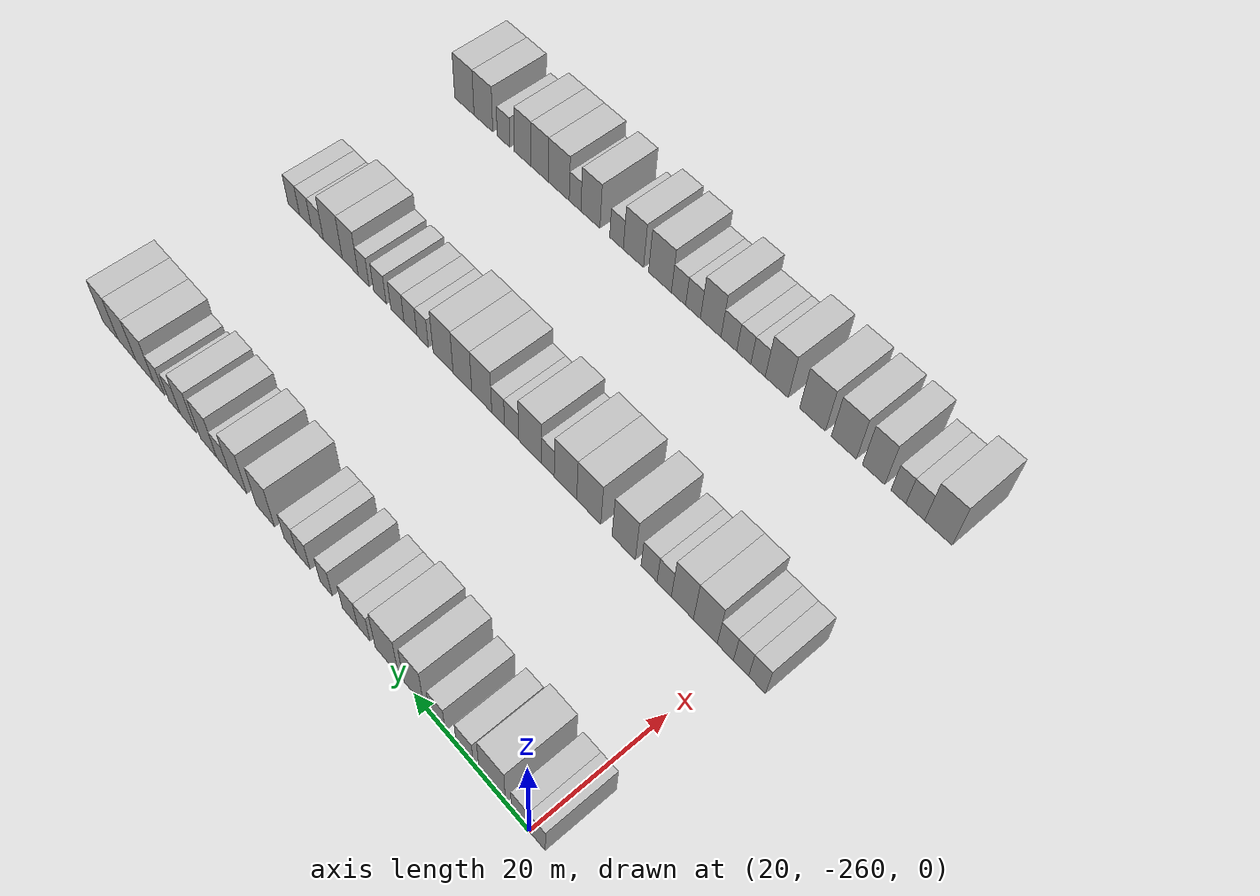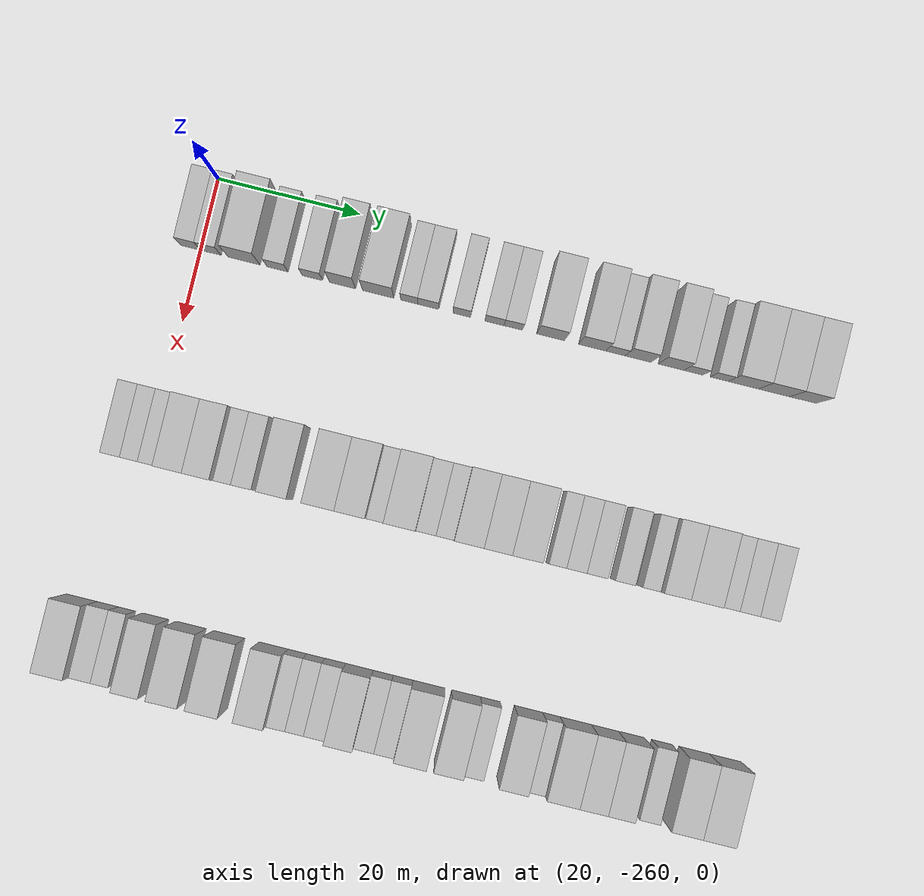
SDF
<sdf version="1.6">
 <world name="default">
  <model name="building_51">
   <static>1</static>
   <pose>25.0000 -261.2917 0 0.000000 0.000000 0.000000</pose>
   <link name="link">
    <pose>0 0 3.00 0 0 0</pose>
    <collision name="collision"><geometry><box><size>10.0000 2.7397 6.0000</size></box></geometry></collision>
    <visual name="visual">
     <cast_shadows>0</cast_shadows>
     <geometry><box><size>10.0000 2.7397 6.0000</size></box></geometry>
     <material>
      <script>
       <uri>model://HANNAS_wall/materials/scripts</uri>
       <uri>model://HANNAS_wall/materials/textures</uri>
       <name>vrc/HANNAS_wall</name>
      </script>
     </material>
    </visual>
   </link>
  </model>
  <model name="building_52">
   <static>1</static>
   <pose>25.0000 -258.4935 0 0.000000 0.000000 0.000000</pose>
   <link name="link">
    <pose>0 0 3.00 0 0 0</pose>
    <collision name="collision"><geometry><box><size>10.0000 2.8569 6.0000</size></box></geometry></collision>
    <visual name="visual">
     <cast_shadows>0</cast_shadows>
     <geometry><box><size>10.0000 2.8569 6.0000</size></box></geometry>
     <material>
      <script>
       <uri>model://HANNAS_wall/materials/scripts</uri>
       <uri>model://HANNAS_wall/materials/textures</uri>
       <name>vrc/HANNAS_wall</name>
      </script>
     </material>
    </visual>
   </link>
  </model>
  <model name="building_53">
   <static>1</static>
   <pose>25.0000 -253.8301 0 0.000000 0.000000 0.000000</pose>
   <link name="link">
    <pose>0 0 4.50 0 0 0</pose>
    <collision name="collision"><geometry><box><size>10.0000 4.4698 9.0000</size></box></geometry></collision>
    <visual name="visual">
     <cast_shadows>0</cast_shadows>
     <geometry><box><size>10.0000 4.4698 9.0000</size></box></geometry>
     <material>
      <script>
       <uri>model://HANNAS_wall/materials/scripts</uri>
       <uri>model://HANNAS_wall/materials/textures</uri>
       <name>vrc/HANNAS_wall</name>
      </script>
     </material>
    </visual>
   </link>
  </model>
  <model name="building_54">
   <static>1</static>
   <pose>25.0000 -249.1184 0 0.000000 0.000000 0.000000</pose>
   <link name="link">
    <pose>0 0 3.00 0 0 0</pose>
    <collision name="collision"><geometry><box><size>10.0000 2.9537 6.0000</size></box></geometry></collision>
    <visual name="visual">
     <cast_shadows>0</cast_shadows>
     <geometry><box><size>10.0000 2.9537 6.0000</size></box></geometry>
     <material>
      <script>
       <uri>model://HANNAS_wall/materials/scripts</uri>
       <uri>model://HANNAS_wall/materials/textures</uri>
       <name>vrc/HANNAS_wall</name>
      </script>
     </material>
    </visual>
   </link>
  </model>
  <model name="building_55">
   <static>1</static>
   <pose>25.0000 -244.2118 0 0.000000 0.000000 0.000000</pose>
   <link name="link">
    <pose>0 0 3.00 0 0 0</pose>
    <collision name="collision"><geometry><box><size>10.0000 2.8596 6.0000</size></box></geometry></collision>
    <visual name="visual">
     <cast_shadows>0</cast_shadows>
     <geometry><box><size>10.0000 2.8596 6.0000</size></box></geometry>
     <material>
      <script>
       <uri>model://HANNAS_wall/materials/scripts</uri>
       <uri>model://HANNAS_wall/materials/textures</uri>
       <name>vrc/HANNAS_wall</name>
      </script>
     </material>
    </visual>
   </link>
  </model>
  <model name="building_56">
   <static>1</static>
   <pose>25.0000 -239.9653 0 0.000000 0.000000 0.000000</pose>
   <link name="link">
    <pose>0 0 4.50 0 0 0</pose>
    <collision name="collision"><geometry><box><size>10.0000 3.6334 9.0000</size></box></geometry></collision>
    <visual name="visual">
     <cast_shadows>0</cast_shadows>
     <geometry><box><size>10.0000 3.6334 9.0000</size></box></geometry>
     <material>
      <script>
       <uri>model://HANNAS_wall/materials/scripts</uri>
       <uri>model://HANNAS_wall/materials/textures</uri>
       <name>vrc/HANNAS_wall</name>
      </script>
     </material>
    </visual>
   </link>
  </model>
  <model name="building_57">
   <static>1</static>
   <pose>25.0000 -234.9672 0 0.000000 0.000000 0.000000</pose>
   <link name="link">
    <pose>0 0 4.50 0 0 0</pose>
    <collision name="collision"><geometry><box><size>10.0000 4.3627 9.0000</size></box></geometry></collision>
    <visual name="visual">
     <cast_shadows>0</cast_shadows>
     <geometry><box><size>10.0000 4.3627 9.0000</size></box></geometry>
     <material>
      <script>
       <uri>model://HANNAS_wall/materials/scripts</uri>
       <uri>model://HANNAS_wall/materials/textures</uri>
       <name>vrc/HANNAS_wall</name>
      </script>
     </material>
    </visual>
   </link>
  </model>
  <model name="building_58">
   <static>1</static>
   <pose>25.0000 -230.5856 0 0.000000 0.000000 0.000000</pose>
   <link name="link">
    <pose>0 0 3.00 0 0 0</pose>
    <collision name="collision"><geometry><box><size>10.0000 2.4004 6.0000</size></box></geometry></collision>
    <visual name="visual">
     <cast_shadows>0</cast_shadows>
     <geometry><box><size>10.0000 2.4004 6.0000</size></box></geometry>
     <material>
      <script>
       <uri>model://HANNAS_wall/materials/scripts</uri>
       <uri>model://HANNAS_wall/materials/textures</uri>
       <name>vrc/HANNAS_wall</name>
      </script>
     </material>
    </visual>
   </link>
  </model>
  <model name="building_59">
   <static>1</static>
   <pose>25.0000 -227.9175 0 0.000000 0.000000 0.000000</pose>
   <link name="link">
    <pose>0 0 3.00 0 0 0</pose>
    <collision name="collision"><geometry><box><size>10.0000 2.9358 6.0000</size></box></geometry></collision>
    <visual name="visual">
     <cast_shadows>0</cast_shadows>
     <geometry><box><size>10.0000 2.9358 6.0000</size></box></geometry>
     <material>
      <script>
       <uri>model://HANNAS_wall/materials/scripts</uri>
       <uri>model://HANNAS_wall/materials/textures</uri>
       <name>vrc/HANNAS_wall</name>
      </script>
     </material>
    </visual>
   </link>
  </model>
  <model name="building_60">
   <static>1</static>
   <pose>25.0000 -223.2182 0 0.000000 0.000000 0.000000</pose>
   <link name="link">
    <pose>0 0 3.00 0 0 0</pose>
    <collision name="collision"><geometry><box><size>10.0000 2.4628 6.0000</size></box></geometry></collision>
    <visual name="visual">
     <cast_shadows>0</cast_shadows>
     <geometry><box><size>10.0000 2.4628 6.0000</size></box></geometry>
     <material>
      <script>
       <uri>model://HANNAS_wall/materials/scripts</uri>
       <uri>model://HANNAS_wall/materials/textures</uri>
       <name>vrc/HANNAS_wall</name>
      </script>
     </material>
    </visual>
   </link>
  </model>
  <model name="building_61">
   <static>1</static>
   <pose>25.0000 -218.6369 0 0.000000 0.000000 0.000000</pose>
   <link name="link">
    <pose>0 0 3.00 0 0 0</pose>
    <collision name="collision"><geometry><box><size>10.0000 2.6998 6.0000</size></box></geometry></collision>
    <visual name="visual">
     <cast_shadows>0</cast_shadows>
     <geometry><box><size>10.0000 2.6998 6.0000</size></box></geometry>
     <material>
      <script>
       <uri>model://HANNAS_wall/materials/scripts</uri>
       <uri>model://HANNAS_wall/materials/textures</uri>
       <name>vrc/HANNAS_wall</name>
      </script>
     </material>
    </visual>
   </link>
  </model>
  <model name="building_62">
   <static>1</static>
   <pose>25.0000 -215.9853 0 0.000000 0.000000 0.000000</pose>
   <link name="link">
    <pose>0 0 3.00 0 0 0</pose>
    <collision name="collision"><geometry><box><size>10.0000 2.6033 6.0000</size></box></geometry></collision>
    <visual name="visual">
     <cast_shadows>0</cast_shadows>
     <geometry><box><size>10.0000 2.6033 6.0000</size></box></geometry>
     <material>
      <script>
       <uri>model://HANNAS_wall/materials/scripts</uri>
       <uri>model://HANNAS_wall/materials/textures</uri>
       <name>vrc/HANNAS_wall</name>
      </script>
     </material>
    </visual>
   </link>
  </model>
  <model name="building_63">
   <static>1</static>
   <pose>25.0000 -210.7302 0 0.000000 0.000000 0.000000</pose>
   <link name="link">
    <pose>0 0 4.50 0 0 0</pose>
    <collision name="collision"><geometry><box><size>10.0000 3.9068 9.0000</size></box></geometry></collision>
    <visual name="visual">
     <cast_shadows>0</cast_shadows>
     <geometry><box><size>10.0000 3.9068 9.0000</size></box></geometry>
     <material>
      <script>
       <uri>model://HANNAS_wall/materials/scripts</uri>
       <uri>model://HANNAS_wall/materials/textures</uri>
       <name>vrc/HANNAS_wall</name>
      </script>
     </material>
    </visual>
   </link>
  </model>
  <model name="building_64">
   <static>1</static>
   <pose>25.0000 -204.8538 0 0.000000 0.000000 0.000000</pose>
   <link name="link">
    <pose>0 0 4.50 0 0 0</pose>
    <collision name="collision"><geometry><box><size>10.0000 3.8460 9.0000</size></box></geometry></collision>
    <visual name="visual">
     <cast_shadows>0</cast_shadows>
     <geometry><box><size>10.0000 3.8460 9.0000</size></box></geometry>
     <material>
      <script>
       <uri>model://HANNAS_wall/materials/scripts</uri>
       <uri>model://HANNAS_wall/materials/textures</uri>
       <name>vrc/HANNAS_wall</name>
      </script>
     </material>
    </visual>
   </link>
  </model>
  <model name="building_65">
   <static>1</static>
   <pose>25.0000 -201.5552 0 0.000000 0.000000 0.000000</pose>
   <link name="link">
    <pose>0 0 3.00 0 0 0</pose>
    <collision name="collision"><geometry><box><size>10.0000 2.7513 6.0000</size></box></geometry></collision>
    <visual name="visual">
     <cast_shadows>0</cast_shadows>
     <geometry><box><size>10.0000 2.7513 6.0000</size></box></geometry>
     <material>
      <script>
       <uri>model://HANNAS_wall/materials/scripts</uri>
       <uri>model://HANNAS_wall/materials/textures</uri>
       <name>vrc/HANNAS_wall</name>
      </script>
     </material>
    </visual>
   </link>
  </model>
  <model name="building_66">
   <static>1</static>
   <pose>25.0000 -198.3663 0 0.000000 0.000000 0.000000</pose>
   <link name="link">
    <pose>0 0 4.50 0 0 0</pose>
    <collision name="collision"><geometry><box><size>10.0000 3.6265 9.0000</size></box></geometry></collision>
    <visual name="visual">
     <cast_shadows>0</cast_shadows>
     <geometry><box><size>10.0000 3.6265 9.0000</size></box></geometry>
     <material>
      <script>
       <uri>model://HANNAS_wall/materials/scripts</uri>
       <uri>model://HANNAS_wall/materials/textures</uri>
       <name>vrc/HANNAS_wall</name>
      </script>
     </material>
    </visual>
   </link>
  </model>
  <model name="building_67">
   <static>1</static>
   <pose>25.0000 -193.7515 0 0.000000 0.000000 0.000000</pose>
   <link name="link">
    <pose>0 0 4.50 0 0 0</pose>
    <collision name="collision"><geometry><box><size>10.0000 3.6030 9.0000</size></box></geometry></collision>
    <visual name="visual">
     <cast_shadows>0</cast_shadows>
     <geometry><box><size>10.0000 3.6030 9.0000</size></box></geometry>
     <material>
      <script>
       <uri>model://HANNAS_wall/materials/scripts</uri>
       <uri>model://HANNAS_wall/materials/textures</uri>
       <name>vrc/HANNAS_wall</name>
      </script>
     </material>
    </visual>
   </link>
  </model>
  <model name="building_68">
   <static>1</static>
   <pose>25.0000 -190.6023 0 0.000000 0.000000 0.000000</pose>
   <link name="link">
    <pose>0 0 3.00 0 0 0</pose>
    <collision name="collision"><geometry><box><size>10.0000 2.6955 6.0000</size></box></geometry></collision>
    <visual name="visual">
     <cast_shadows>0</cast_shadows>
     <geometry><box><size>10.0000 2.6955 6.0000</size></box></geometry>
     <material>
      <script>
       <uri>model://HANNAS_wall/materials/scripts</uri>
       <uri>model://HANNAS_wall/materials/textures</uri>
       <name>vrc/HANNAS_wall</name>
      </script>
     </material>
    </visual>
   </link>
  </model>
  <model name="building_69">
   <static>1</static>
   <pose>25.0000 -186.9946 0 0.000000 0.000000 0.000000</pose>
   <link name="link">
    <pose>0 0 3.00 0 0 0</pose>
    <collision name="collision"><geometry><box><size>10.0000 2.5198 6.0000</size></box></geometry></collision>
    <visual name="visual">
     <cast_shadows>0</cast_shadows>
     <geometry><box><size>10.0000 2.5198 6.0000</size></box></geometry>
     <material>
      <script>
       <uri>model://HANNAS_wall/materials/scripts</uri>
       <uri>model://HANNAS_wall/materials/textures</uri>
       <name>vrc/HANNAS_wall</name>
      </script>
     </material>
    </visual>
   </link>
  </model>
  <model name="building_70">
   <static>1</static>
   <pose>25.0000 -183.5985 0 0.000000 0.000000 0.000000</pose>
   <link name="link">
    <pose>0 0 4.50 0 0 0</pose>
    <collision name="collision"><geometry><box><size>10.0000 4.2725 9.0000</size></box></geometry></collision>
    <visual name="visual">
     <cast_shadows>0</cast_shadows>
     <geometry><box><size>10.0000 4.2725 9.0000</size></box></geometry>
     <material>
      <script>
       <uri>model://HANNAS_wall/materials/scripts</uri>
       <uri>model://HANNAS_wall/materials/textures</uri>
       <name>vrc/HANNAS_wall</name>
      </script>
     </material>
    </visual>
   </link>
  </model>
  <model name="building_71">
   <static>1</static>
   <pose>25.0000 -179.2704 0 0.000000 0.000000 0.000000</pose>
   <link name="link">
    <pose>0 0 4.50 0 0 0</pose>
    <collision name="collision"><geometry><box><size>10.0000 4.3836 9.0000</size></box></geometry></collision>
    <visual name="visual">
     <cast_shadows>0</cast_shadows>
     <geometry><box><size>10.0000 4.3836 9.0000</size></box></geometry>
     <material>
      <script>
       <uri>model://HANNAS_wall/materials/scripts</uri>
       <uri>model://HANNAS_wall/materials/textures</uri>
       <name>vrc/HANNAS_wall</name>
      </script>
     </material>
    </visual>
   </link>
  </model>
  <model name="building_72">
   <static>1</static>
   <pose>25.0000 -175.2065 0 0.000000 0.000000 0.000000</pose>
   <link name="link">
    <pose>0 0 4.50 0 0 0</pose>
    <collision name="collision"><geometry><box><size>10.0000 3.7442 9.0000</size></box></geometry></collision>
    <visual name="visual">
     <cast_shadows>0</cast_shadows>
     <geometry><box><size>10.0000 3.7442 9.0000</size></box></geometry>
     <material>
      <script>
       <uri>model://HANNAS_wall/materials/scripts</uri>
       <uri>model://HANNAS_wall/materials/textures</uri>
       <name>vrc/HANNAS_wall</name>
      </script>
     </material>
    </visual>
   </link>
  </model>
  <model name="building_284">
   <static>1</static>
   <pose>55.0000 -263.9423 0 0.000000 0.000000 0.000000</pose>
   <link name="link">
    <pose>0 0 3.00 0 0 0</pose>
    <collision name="collision"><geometry><box><size>10.0000 2.6891 6.0000</size></box></geometry></collision>
    <visual name="visual">
     <cast_shadows>0</cast_shadows>
     <geometry><box><size>10.0000 2.6891 6.0000</size></box></geometry>
     <material>
      <script>
       <uri>model://HANNAS_wall/materials/scripts</uri>
       <uri>model://HANNAS_wall/materials/textures</uri>
       <name>vrc/HANNAS_wall</name>
      </script>
     </material>
    </visual>
   </link>
  </model>
  <model name="building_285">
   <static>1</static>
   <pose>55.0000 -261.3743 0 0.000000 0.000000 0.000000</pose>
   <link name="link">
    <pose>0 0 3.00 0 0 0</pose>
    <collision name="collision"><geometry><box><size>10.0000 2.4468 6.0000</size></box></geometry></collision>
    <visual name="visual">
     <cast_shadows>0</cast_shadows>
     <geometry><box><size>10.0000 2.4468 6.0000</size></box></geometry>
     <material>
      <script>
       <uri>model://HANNAS_wall/materials/scripts</uri>
       <uri>model://HANNAS_wall/materials/textures</uri>
       <name>vrc/HANNAS_wall</name>
      </script>
     </material>
    </visual>
   </link>
  </model>
  <model name="building_286">
   <static>1</static>
   <pose>55.0000 -258.8310 0 0.000000 0.000000 0.000000</pose>
   <link name="link">
    <pose>0 0 3.00 0 0 0</pose>
    <collision name="collision"><geometry><box><size>10.0000 2.6399 6.0000</size></box></geometry></collision>
    <visual name="visual">
     <cast_shadows>0</cast_shadows>
     <geometry><box><size>10.0000 2.6399 6.0000</size></box></geometry>
     <material>
      <script>
       <uri>model://HANNAS_wall/materials/scripts</uri>
       <uri>model://HANNAS_wall/materials/textures</uri>
       <name>vrc/HANNAS_wall</name>
      </script>
     </material>
    </visual>
   </link>
  </model>
  <model name="building_287">
   <static>1</static>
   <pose>55.0000 -255.5457 0 0.000000 0.000000 0.000000</pose>
   <link name="link">
    <pose>0 0 4.50 0 0 0</pose>
    <collision name="collision"><geometry><box><size>10.0000 3.9307 9.0000</size></box></geometry></collision>
    <visual name="visual">
     <cast_shadows>0</cast_shadows>
     <geometry><box><size>10.0000 3.9307 9.0000</size></box></geometry>
     <material>
      <script>
       <uri>model://HANNAS_wall/materials/scripts</uri>
       <uri>model://HANNAS_wall/materials/textures</uri>
       <name>vrc/HANNAS_wall</name>
      </script>
     </material>
    </visual>
   </link>
  </model>
  <model name="building_288">
   <static>1</static>
   <pose>55.0000 -251.7187 0 0.000000 0.000000 0.000000</pose>
   <link name="link">
    <pose>0 0 4.50 0 0 0</pose>
    <collision name="collision"><geometry><box><size>10.0000 3.7232 9.0000</size></box></geometry></collision>
    <visual name="visual">
     <cast_shadows>0</cast_shadows>
     <geometry><box><size>10.0000 3.7232 9.0000</size></box></geometry>
     <material>
      <script>
       <uri>model://HANNAS_wall/materials/scripts</uri>
       <uri>model://HANNAS_wall/materials/textures</uri>
       <name>vrc/HANNAS_wall</name>
      </script>
     </material>
    </visual>
   </link>
  </model>
  <model name="building_289">
   <static>1</static>
   <pose>55.0000 -248.6297 0 0.000000 0.000000 0.000000</pose>
   <link name="link">
    <pose>0 0 3.00 0 0 0</pose>
    <collision name="collision"><geometry><box><size>10.0000 2.4548 6.0000</size></box></geometry></collision>
    <visual name="visual">
     <cast_shadows>0</cast_shadows>
     <geometry><box><size>10.0000 2.4548 6.0000</size></box></geometry>
     <material>
      <script>
       <uri>model://HANNAS_wall/materials/scripts</uri>
       <uri>model://HANNAS_wall/materials/textures</uri>
       <name>vrc/HANNAS_wall</name>
      </script>
     </material>
    </visual>
   </link>
  </model>
  <model name="building_290">
   <static>1</static>
   <pose>55.0000 -246.0235 0 0.000000 0.000000 0.000000</pose>
   <link name="link">
    <pose>0 0 3.00 0 0 0</pose>
    <collision name="collision"><geometry><box><size>10.0000 2.7576 6.0000</size></box></geometry></collision>
    <visual name="visual">
     <cast_shadows>0</cast_shadows>
     <geometry><box><size>10.0000 2.7576 6.0000</size></box></geometry>
     <material>
      <script>
       <uri>model://HANNAS_wall/materials/scripts</uri>
       <uri>model://HANNAS_wall/materials/textures</uri>
       <name>vrc/HANNAS_wall</name>
      </script>
     </material>
    </visual>
   </link>
  </model>
  <model name="building_291">
   <static>1</static>
   <pose>55.0000 -241.5832 0 0.000000 0.000000 0.000000</pose>
   <link name="link">
    <pose>0 0 4.50 0 0 0</pose>
    <collision name="collision"><geometry><box><size>10.0000 4.1232 9.0000</size></box></geometry></collision>
    <visual name="visual">
     <cast_shadows>0</cast_shadows>
     <geometry><box><size>10.0000 4.1232 9.0000</size></box></geometry>
     <material>
      <script>
       <uri>model://HANNAS_wall/materials/scripts</uri>
       <uri>model://HANNAS_wall/materials/textures</uri>
       <name>vrc/HANNAS_wall</name>
      </script>
     </material>
    </visual>
   </link>
  </model>
  <model name="building_292">
   <static>1</static>
   <pose>55.0000 -235.3112 0 0.000000 0.000000 0.000000</pose>
   <link name="link">
    <pose>0 0 4.50 0 0 0</pose>
    <collision name="collision"><geometry><box><size>10.0000 4.4206 9.0000</size></box></geometry></collision>
    <visual name="visual">
     <cast_shadows>0</cast_shadows>
     <geometry><box><size>10.0000 4.4206 9.0000</size></box></geometry>
     <material>
      <script>
       <uri>model://HANNAS_wall/materials/scripts</uri>
       <uri>model://HANNAS_wall/materials/textures</uri>
       <name>vrc/HANNAS_wall</name>
      </script>
     </material>
    </visual>
   </link>
  </model>
  <model name="building_293">
   <static>1</static>
   <pose>55.0000 -231.0193 0 0.000000 0.000000 0.000000</pose>
   <link name="link">
    <pose>0 0 4.50 0 0 0</pose>
    <collision name="collision"><geometry><box><size>10.0000 4.1633 9.0000</size></box></geometry></collision>
    <visual name="visual">
     <cast_shadows>0</cast_shadows>
     <geometry><box><size>10.0000 4.1633 9.0000</size></box></geometry>
     <material>
      <script>
       <uri>model://HANNAS_wall/materials/scripts</uri>
       <uri>model://HANNAS_wall/materials/textures</uri>
       <name>vrc/HANNAS_wall</name>
      </script>
     </material>
    </visual>
   </link>
  </model>
  <model name="building_294">
   <static>1</static>
   <pose>55.0000 -227.7117 0 0.000000 0.000000 0.000000</pose>
   <link name="link">
    <pose>0 0 3.00 0 0 0</pose>
    <collision name="collision"><geometry><box><size>10.0000 2.4520 6.0000</size></box></geometry></collision>
    <visual name="visual">
     <cast_shadows>0</cast_shadows>
     <geometry><box><size>10.0000 2.4520 6.0000</size></box></geometry>
     <material>
      <script>
       <uri>model://HANNAS_wall/materials/scripts</uri>
       <uri>model://HANNAS_wall/materials/textures</uri>
       <name>vrc/HANNAS_wall</name>
      </script>
     </material>
    </visual>
   </link>
  </model>
  <model name="building_295">
   <static>1</static>
   <pose>55.0000 -224.3098 0 0.000000 0.000000 0.000000</pose>
   <link name="link">
    <pose>0 0 4.50 0 0 0</pose>
    <collision name="collision"><geometry><box><size>10.0000 4.3518 9.0000</size></box></geometry></collision>
    <visual name="visual">
     <cast_shadows>0</cast_shadows>
     <geometry><box><size>10.0000 4.3518 9.0000</size></box></geometry>
     <material>
      <script>
       <uri>model://HANNAS_wall/materials/scripts</uri>
       <uri>model://HANNAS_wall/materials/textures</uri>
       <name>vrc/HANNAS_wall</name>
      </script>
     </material>
    </visual>
   </link>
  </model>
  <model name="building_296">
   <static>1</static>
   <pose>55.0000 -220.7575 0 0.000000 0.000000 0.000000</pose>
   <link name="link">
    <pose>0 0 3.00 0 0 0</pose>
    <collision name="collision"><geometry><box><size>10.0000 2.7527 6.0000</size></box></geometry></collision>
    <visual name="visual">
     <cast_shadows>0</cast_shadows>
     <geometry><box><size>10.0000 2.7527 6.0000</size></box></geometry>
     <material>
      <script>
       <uri>model://HANNAS_wall/materials/scripts</uri>
       <uri>model://HANNAS_wall/materials/textures</uri>
       <name>vrc/HANNAS_wall</name>
      </script>
     </material>
    </visual>
   </link>
  </model>
  <model name="building_297">
   <static>1</static>
   <pose>55.0000 -218.1315 0 0.000000 0.000000 0.000000</pose>
   <link name="link">
    <pose>0 0 3.00 0 0 0</pose>
    <collision name="collision"><geometry><box><size>10.0000 2.4993 6.0000</size></box></geometry></collision>
    <visual name="visual">
     <cast_shadows>0</cast_shadows>
     <geometry><box><size>10.0000 2.4993 6.0000</size></box></geometry>
     <material>
      <script>
       <uri>model://HANNAS_wall/materials/scripts</uri>
       <uri>model://HANNAS_wall/materials/textures</uri>
       <name>vrc/HANNAS_wall</name>
      </script>
     </material>
    </visual>
   </link>
  </model>
  <model name="building_298">
   <static>1</static>
   <pose>55.0000 -214.8879 0 0.000000 0.000000 0.000000</pose>
   <link name="link">
    <pose>0 0 4.50 0 0 0</pose>
    <collision name="collision"><geometry><box><size>10.0000 3.9878 9.0000</size></box></geometry></collision>
    <visual name="visual">
     <cast_shadows>0</cast_shadows>
     <geometry><box><size>10.0000 3.9878 9.0000</size></box></geometry>
     <material>
      <script>
       <uri>model://HANNAS_wall/materials/scripts</uri>
       <uri>model://HANNAS_wall/materials/textures</uri>
       <name>vrc/HANNAS_wall</name>
      </script>
     </material>
    </visual>
   </link>
  </model>
  <model name="building_299">
   <static>1</static>
   <pose>55.0000 -210.9860 0 0.000000 0.000000 0.000000</pose>
   <link name="link">
    <pose>0 0 4.50 0 0 0</pose>
    <collision name="collision"><geometry><box><size>10.0000 3.8160 9.0000</size></box></geometry></collision>
    <visual name="visual">
     <cast_shadows>0</cast_shadows>
     <geometry><box><size>10.0000 3.8160 9.0000</size></box></geometry>
     <material>
      <script>
       <uri>model://HANNAS_wall/materials/scripts</uri>
       <uri>model://HANNAS_wall/materials/textures</uri>
       <name>vrc/HANNAS_wall</name>
      </script>
     </material>
    </visual>
   </link>
  </model>
  <model name="building_300">
   <static>1</static>
   <pose>55.0000 -207.0012 0 0.000000 0.000000 0.000000</pose>
   <link name="link">
    <pose>0 0 4.50 0 0 0</pose>
    <collision name="collision"><geometry><box><size>10.0000 4.1535 9.0000</size></box></geometry></collision>
    <visual name="visual">
     <cast_shadows>0</cast_shadows>
     <geometry><box><size>10.0000 4.1535 9.0000</size></box></geometry>
     <material>
      <script>
       <uri>model://HANNAS_wall/materials/scripts</uri>
       <uri>model://HANNAS_wall/materials/textures</uri>
       <name>vrc/HANNAS_wall</name>
      </script>
     </material>
    </visual>
   </link>
  </model>
  <model name="building_301">
   <static>1</static>
   <pose>55.0000 -202.7192 0 0.000000 0.000000 0.000000</pose>
   <link name="link">
    <pose>0 0 3.00 0 0 0</pose>
    <collision name="collision"><geometry><box><size>10.0000 2.4105 6.0000</size></box></geometry></collision>
    <visual name="visual">
     <cast_shadows>0</cast_shadows>
     <geometry><box><size>10.0000 2.4105 6.0000</size></box></geometry>
     <material>
      <script>
       <uri>model://HANNAS_wall/materials/scripts</uri>
       <uri>model://HANNAS_wall/materials/textures</uri>
       <name>vrc/HANNAS_wall</name>
      </script>
     </material>
    </visual>
   </link>
  </model>
  <model name="building_302">
   <static>1</static>
   <pose>55.0000 -200.1260 0 0.000000 0.000000 0.000000</pose>
   <link name="link">
    <pose>0 0 3.00 0 0 0</pose>
    <collision name="collision"><geometry><box><size>10.0000 2.7760 6.0000</size></box></geometry></collision>
    <visual name="visual">
     <cast_shadows>0</cast_shadows>
     <geometry><box><size>10.0000 2.7760 6.0000</size></box></geometry>
     <material>
      <script>
       <uri>model://HANNAS_wall/materials/scripts</uri>
       <uri>model://HANNAS_wall/materials/textures</uri>
       <name>vrc/HANNAS_wall</name>
      </script>
     </material>
    </visual>
   </link>
  </model>
  <model name="building_303">
   <static>1</static>
   <pose>55.0000 -197.3080 0 0.000000 0.000000 0.000000</pose>
   <link name="link">
    <pose>0 0 3.00 0 0 0</pose>
    <collision name="collision"><geometry><box><size>10.0000 2.8600 6.0000</size></box></geometry></collision>
    <visual name="visual">
     <cast_shadows>0</cast_shadows>
     <geometry><box><size>10.0000 2.8600 6.0000</size></box></geometry>
     <material>
      <script>
       <uri>model://HANNAS_wall/materials/scripts</uri>
       <uri>model://HANNAS_wall/materials/textures</uri>
       <name>vrc/HANNAS_wall</name>
      </script>
     </material>
    </visual>
   </link>
  </model>
  <model name="building_304">
   <static>1</static>
   <pose>55.0000 -193.4981 0 0.000000 0.000000 0.000000</pose>
   <link name="link">
    <pose>0 0 3.00 0 0 0</pose>
    <collision name="collision"><geometry><box><size>10.0000 2.7597 6.0000</size></box></geometry></collision>
    <visual name="visual">
     <cast_shadows>0</cast_shadows>
     <geometry><box><size>10.0000 2.7597 6.0000</size></box></geometry>
     <material>
      <script>
       <uri>model://HANNAS_wall/materials/scripts</uri>
       <uri>model://HANNAS_wall/materials/textures</uri>
       <name>vrc/HANNAS_wall</name>
      </script>
     </material>
    </visual>
   </link>
  </model>
  <model name="building_305">
   <static>1</static>
   <pose>55.0000 -189.8906 0 0.000000 0.000000 0.000000</pose>
   <link name="link">
    <pose>0 0 3.00 0 0 0</pose>
    <collision name="collision"><geometry><box><size>10.0000 2.4553 6.0000</size></box></geometry></collision>
    <visual name="visual">
     <cast_shadows>0</cast_shadows>
     <geometry><box><size>10.0000 2.4553 6.0000</size></box></geometry>
     <material>
      <script>
       <uri>model://HANNAS_wall/materials/scripts</uri>
       <uri>model://HANNAS_wall/materials/textures</uri>
       <name>vrc/HANNAS_wall</name>
      </script>
     </material>
    </visual>
   </link>
  </model>
  <model name="building_306">
   <static>1</static>
   <pose>55.0000 -186.8579 0 0.000000 0.000000 0.000000</pose>
   <link name="link">
    <pose>0 0 4.50 0 0 0</pose>
    <collision name="collision"><geometry><box><size>10.0000 3.6101 9.0000</size></box></geometry></collision>
    <visual name="visual">
     <cast_shadows>0</cast_shadows>
     <geometry><box><size>10.0000 3.6101 9.0000</size></box></geometry>
     <material>
      <script>
       <uri>model://HANNAS_wall/materials/scripts</uri>
       <uri>model://HANNAS_wall/materials/textures</uri>
       <name>vrc/HANNAS_wall</name>
      </script>
     </material>
    </visual>
   </link>
  </model>
  <model name="building_307">
   <static>1</static>
   <pose>55.0000 -182.8649 0 0.000000 0.000000 0.000000</pose>
   <link name="link">
    <pose>0 0 4.50 0 0 0</pose>
    <collision name="collision"><geometry><box><size>10.0000 4.3759 9.0000</size></box></geometry></collision>
    <visual name="visual">
     <cast_shadows>0</cast_shadows>
     <geometry><box><size>10.0000 4.3759 9.0000</size></box></geometry>
     <material>
      <script>
       <uri>model://HANNAS_wall/materials/scripts</uri>
       <uri>model://HANNAS_wall/materials/textures</uri>
       <name>vrc/HANNAS_wall</name>
      </script>
     </material>
    </visual>
   </link>
  </model>
  <model name="building_308">
   <static>1</static>
   <pose>55.0000 -179.2752 0 0.000000 0.000000 0.000000</pose>
   <link name="link">
    <pose>0 0 3.00 0 0 0</pose>
    <collision name="collision"><geometry><box><size>10.0000 2.8035 6.0000</size></box></geometry></collision>
    <visual name="visual">
     <cast_shadows>0</cast_shadows>
     <geometry><box><size>10.0000 2.8035 6.0000</size></box></geometry>
     <material>
      <script>
       <uri>model://HANNAS_wall/materials/scripts</uri>
       <uri>model://HANNAS_wall/materials/textures</uri>
       <name>vrc/HANNAS_wall</name>
      </script>
     </material>
    </visual>
   </link>
  </model>
  <model name="building_309">
   <static>1</static>
   <pose>55.0000 -176.4756 0 0.000000 0.000000 0.000000</pose>
   <link name="link">
    <pose>0 0 3.00 0 0 0</pose>
    <collision name="collision"><geometry><box><size>10.0000 2.7957 6.0000</size></box></geometry></collision>
    <visual name="visual">
     <cast_shadows>0</cast_shadows>
     <geometry><box><size>10.0000 2.7957 6.0000</size></box></geometry>
     <material>
      <script>
       <uri>model://HANNAS_wall/materials/scripts</uri>
       <uri>model://HANNAS_wall/materials/textures</uri>
       <name>vrc/HANNAS_wall</name>
      </script>
     </material>
    </visual>
   </link>
  </model>
  <model name="building_310">
   <static>1</static>
   <pose>55.0000 -173.6918 0 0.000000 0.000000 0.000000</pose>
   <link name="link">
    <pose>0 0 3.00 0 0 0</pose>
    <collision name="collision"><geometry><box><size>10.0000 2.7719 6.0000</size></box></geometry></collision>
    <visual name="visual">
     <cast_shadows>0</cast_shadows>
     <geometry><box><size>10.0000 2.7719 6.0000</size></box></geometry>
     <material>
      <script>
       <uri>model://HANNAS_wall/materials/scripts</uri>
       <uri>model://HANNAS_wall/materials/textures</uri>
       <name>vrc/HANNAS_wall</name>
      </script>
     </material>
    </visual>
   </link>
  </model>
  <model name="building_523">
   <static>1</static>
   <pose>85.0000 -264.2668 0 0.000000 0.000000 0.000000</pose>
   <link name="link">
    <pose>0 0 4.50 0 0 0</pose>
    <collision name="collision"><geometry><box><size>10.0000 4.3327 9.0000</size></box></geometry></collision>
    <visual name="visual">
     <cast_shadows>0</cast_shadows>
     <geometry><box><size>10.0000 4.3327 9.0000</size></box></geometry>
     <material>
      <script>
       <uri>model://HANNAS_wall/materials/scripts</uri>
       <uri>model://HANNAS_wall/materials/textures</uri>
       <name>vrc/HANNAS_wall</name>
      </script>
     </material>
    </visual>
   </link>
  </model>
  <model name="building_524">
   <static>1</static>
   <pose>85.0000 -260.6068 0 0.000000 0.000000 0.000000</pose>
   <link name="link">
    <pose>0 0 3.00 0 0 0</pose>
    <collision name="collision"><geometry><box><size>10.0000 2.9872 6.0000</size></box></geometry></collision>
    <visual name="visual">
     <cast_shadows>0</cast_shadows>
     <geometry><box><size>10.0000 2.9872 6.0000</size></box></geometry>
     <material>
      <script>
       <uri>model://HANNAS_wall/materials/scripts</uri>
       <uri>model://HANNAS_wall/materials/textures</uri>
       <name>vrc/HANNAS_wall</name>
      </script>
     </material>
    </visual>
   </link>
  </model>
  <model name="building_525">
   <static>1</static>
   <pose>85.0000 -257.9030 0 0.000000 0.000000 0.000000</pose>
   <link name="link">
    <pose>0 0 3.00 0 0 0</pose>
    <collision name="collision"><geometry><box><size>10.0000 2.4205 6.0000</size></box></geometry></collision>
    <visual name="visual">
     <cast_shadows>0</cast_shadows>
     <geometry><box><size>10.0000 2.4205 6.0000</size></box></geometry>
     <material>
      <script>
       <uri>model://HANNAS_wall/materials/scripts</uri>
       <uri>model://HANNAS_wall/materials/textures</uri>
       <name>vrc/HANNAS_wall</name>
      </script>
     </material>
    </visual>
   </link>
  </model>
  <model name="building_526">
   <static>1</static>
   <pose>85.0000 -253.8433 0 0.000000 0.000000 0.000000</pose>
   <link name="link">
    <pose>0 0 4.50 0 0 0</pose>
    <collision name="collision"><geometry><box><size>10.0000 3.6988 9.0000</size></box></geometry></collision>
    <visual name="visual">
     <cast_shadows>0</cast_shadows>
     <geometry><box><size>10.0000 3.6988 9.0000</size></box></geometry>
     <material>
      <script>
       <uri>model://HANNAS_wall/materials/scripts</uri>
       <uri>model://HANNAS_wall/materials/textures</uri>
       <name>vrc/HANNAS_wall</name>
      </script>
     </material>
    </visual>
   </link>
  </model>
  <model name="building_527">
   <static>1</static>
   <pose>85.0000 -248.8671 0 0.000000 0.000000 0.000000</pose>
   <link name="link">
    <pose>0 0 4.50 0 0 0</pose>
    <collision name="collision"><geometry><box><size>10.0000 4.2536 9.0000</size></box></geometry></collision>
    <visual name="visual">
     <cast_shadows>0</cast_shadows>
     <geometry><box><size>10.0000 4.2536 9.0000</size></box></geometry>
     <material>
      <script>
       <uri>model://HANNAS_wall/materials/scripts</uri>
       <uri>model://HANNAS_wall/materials/textures</uri>
       <name>vrc/HANNAS_wall</name>
      </script>
     </material>
    </visual>
   </link>
  </model>
  <model name="building_528">
   <static>1</static>
   <pose>85.0000 -243.5171 0 0.000000 0.000000 0.000000</pose>
   <link name="link">
    <pose>0 0 4.50 0 0 0</pose>
    <collision name="collision"><geometry><box><size>10.0000 4.4463 9.0000</size></box></geometry></collision>
    <visual name="visual">
     <cast_shadows>0</cast_shadows>
     <geometry><box><size>10.0000 4.4463 9.0000</size></box></geometry>
     <material>
      <script>
       <uri>model://HANNAS_wall/materials/scripts</uri>
       <uri>model://HANNAS_wall/materials/textures</uri>
       <name>vrc/HANNAS_wall</name>
      </script>
     </material>
    </visual>
   </link>
  </model>
  <model name="building_529">
   <static>1</static>
   <pose>85.0000 -237.2376 0 0.000000 0.000000 0.000000</pose>
   <link name="link">
    <pose>0 0 4.50 0 0 0</pose>
    <collision name="collision"><geometry><box><size>10.0000 4.1128 9.0000</size></box></geometry></collision>
    <visual name="visual">
     <cast_shadows>0</cast_shadows>
     <geometry><box><size>10.0000 4.1128 9.0000</size></box></geometry>
     <material>
      <script>
       <uri>model://HANNAS_wall/materials/scripts</uri>
       <uri>model://HANNAS_wall/materials/textures</uri>
       <name>vrc/HANNAS_wall</name>
      </script>
     </material>
    </visual>
   </link>
  </model>
  <model name="building_530">
   <static>1</static>
   <pose>85.0000 -233.8771 0 0.000000 0.000000 0.000000</pose>
   <link name="link">
    <pose>0 0 3.00 0 0 0</pose>
    <collision name="collision"><geometry><box><size>10.0000 2.6082 6.0000</size></box></geometry></collision>
    <visual name="visual">
     <cast_shadows>0</cast_shadows>
     <geometry><box><size>10.0000 2.6082 6.0000</size></box></geometry>
     <material>
      <script>
       <uri>model://HANNAS_wall/materials/scripts</uri>
       <uri>model://HANNAS_wall/materials/textures</uri>
       <name>vrc/HANNAS_wall</name>
      </script>
     </material>
    </visual>
   </link>
  </model>
  <model name="building_531">
   <static>1</static>
   <pose>85.0000 -231.2850 0 0.000000 0.000000 0.000000</pose>
   <link name="link">
    <pose>0 0 3.00 0 0 0</pose>
    <collision name="collision"><geometry><box><size>10.0000 2.5759 6.0000</size></box></geometry></collision>
    <visual name="visual">
     <cast_shadows>0</cast_shadows>
     <geometry><box><size>10.0000 2.5759 6.0000</size></box></geometry>
     <material>
      <script>
       <uri>model://HANNAS_wall/materials/scripts</uri>
       <uri>model://HANNAS_wall/materials/textures</uri>
       <name>vrc/HANNAS_wall</name>
      </script>
     </material>
    </visual>
   </link>
  </model>
  <model name="building_532">
   <static>1</static>
   <pose>85.0000 -228.5389 0 0.000000 0.000000 0.000000</pose>
   <link name="link">
    <pose>0 0 3.00 0 0 0</pose>
    <collision name="collision"><geometry><box><size>10.0000 2.9163 6.0000</size></box></geometry></collision>
    <visual name="visual">
     <cast_shadows>0</cast_shadows>
     <geometry><box><size>10.0000 2.9163 6.0000</size></box></geometry>
     <material>
      <script>
       <uri>model://HANNAS_wall/materials/scripts</uri>
       <uri>model://HANNAS_wall/materials/textures</uri>
       <name>vrc/HANNAS_wall</name>
      </script>
     </material>
    </visual>
   </link>
  </model>
  <model name="building_533">
   <static>1</static>
   <pose>85.0000 -225.1485 0 0.000000 0.000000 0.000000</pose>
   <link name="link">
    <pose>0 0 4.50 0 0 0</pose>
    <collision name="collision"><geometry><box><size>10.0000 3.8646 9.0000</size></box></geometry></collision>
    <visual name="visual">
     <cast_shadows>0</cast_shadows>
     <geometry><box><size>10.0000 3.8646 9.0000</size></box></geometry>
     <material>
      <script>
       <uri>model://HANNAS_wall/materials/scripts</uri>
       <uri>model://HANNAS_wall/materials/textures</uri>
       <name>vrc/HANNAS_wall</name>
      </script>
     </material>
    </visual>
   </link>
  </model>
  <model name="building_534">
   <static>1</static>
   <pose>85.0000 -221.8143 0 0.000000 0.000000 0.000000</pose>
   <link name="link">
    <pose>0 0 3.00 0 0 0</pose>
    <collision name="collision"><geometry><box><size>10.0000 2.8038 6.0000</size></box></geometry></collision>
    <visual name="visual">
     <cast_shadows>0</cast_shadows>
     <geometry><box><size>10.0000 2.8038 6.0000</size></box></geometry>
     <material>
      <script>
       <uri>model://HANNAS_wall/materials/scripts</uri>
       <uri>model://HANNAS_wall/materials/textures</uri>
       <name>vrc/HANNAS_wall</name>
      </script>
     </material>
    </visual>
   </link>
  </model>
  <model name="building_535">
   <static>1</static>
   <pose>85.0000 -219.0327 0 0.000000 0.000000 0.000000</pose>
   <link name="link">
    <pose>0 0 3.00 0 0 0</pose>
    <collision name="collision"><geometry><box><size>10.0000 2.7595 6.0000</size></box></geometry></collision>
    <visual name="visual">
     <cast_shadows>0</cast_shadows>
     <geometry><box><size>10.0000 2.7595 6.0000</size></box></geometry>
     <material>
      <script>
       <uri>model://HANNAS_wall/materials/scripts</uri>
       <uri>model://HANNAS_wall/materials/textures</uri>
       <name>vrc/HANNAS_wall</name>
      </script>
     </material>
    </visual>
   </link>
  </model>
  <model name="building_536">
   <static>1</static>
   <pose>85.0000 -215.4253 0 0.000000 0.000000 0.000000</pose>
   <link name="link">
    <pose>0 0 4.50 0 0 0</pose>
    <collision name="collision"><geometry><box><size>10.0000 4.4552 9.0000</size></box></geometry></collision>
    <visual name="visual">
     <cast_shadows>0</cast_shadows>
     <geometry><box><size>10.0000 4.4552 9.0000</size></box></geometry>
     <material>
      <script>
       <uri>model://HANNAS_wall/materials/scripts</uri>
       <uri>model://HANNAS_wall/materials/textures</uri>
       <name>vrc/HANNAS_wall</name>
      </script>
     </material>
    </visual>
   </link>
  </model>
  <model name="building_537">
   <static>1</static>
   <pose>85.0000 -210.1763 0 0.000000 0.000000 0.000000</pose>
   <link name="link">
    <pose>0 0 4.50 0 0 0</pose>
    <collision name="collision"><geometry><box><size>10.0000 4.0428 9.0000</size></box></geometry></collision>
    <visual name="visual">
     <cast_shadows>0</cast_shadows>
     <geometry><box><size>10.0000 4.0428 9.0000</size></box></geometry>
     <material>
      <script>
       <uri>model://HANNAS_wall/materials/scripts</uri>
       <uri>model://HANNAS_wall/materials/textures</uri>
       <name>vrc/HANNAS_wall</name>
      </script>
     </material>
    </visual>
   </link>
  </model>
  <model name="building_538">
   <static>1</static>
   <pose>85.0000 -206.7705 0 0.000000 0.000000 0.000000</pose>
   <link name="link">
    <pose>0 0 3.00 0 0 0</pose>
    <collision name="collision"><geometry><box><size>10.0000 2.7689 6.0000</size></box></geometry></collision>
    <visual name="visual">
     <cast_shadows>0</cast_shadows>
     <geometry><box><size>10.0000 2.7689 6.0000</size></box></geometry>
     <material>
      <script>
       <uri>model://HANNAS_wall/materials/scripts</uri>
       <uri>model://HANNAS_wall/materials/textures</uri>
       <name>vrc/HANNAS_wall</name>
      </script>
     </material>
    </visual>
   </link>
  </model>
  <model name="building_539">
   <static>1</static>
   <pose>85.0000 -201.4028 0 0.000000 0.000000 0.000000</pose>
   <link name="link">
    <pose>0 0 4.50 0 0 0</pose>
    <collision name="collision"><geometry><box><size>10.0000 3.9664 9.0000</size></box></geometry></collision>
    <visual name="visual">
     <cast_shadows>0</cast_shadows>
     <geometry><box><size>10.0000 3.9664 9.0000</size></box></geometry>
     <material>
      <script>
       <uri>model://HANNAS_wall/materials/scripts</uri>
       <uri>model://HANNAS_wall/materials/textures</uri>
       <name>vrc/HANNAS_wall</name>
      </script>
     </material>
    </visual>
   </link>
  </model>
  <model name="building_540">
   <static>1</static>
   <pose>85.0000 -198.1921 0 0.000000 0.000000 0.000000</pose>
   <link name="link">
    <pose>0 0 3.00 0 0 0</pose>
    <collision name="collision"><geometry><box><size>10.0000 2.4550 6.0000</size></box></geometry></collision>
    <visual name="visual">
     <cast_shadows>0</cast_shadows>
     <geometry><box><size>10.0000 2.4550 6.0000</size></box></geometry>
     <material>
      <script>
       <uri>model://HANNAS_wall/materials/scripts</uri>
       <uri>model://HANNAS_wall/materials/textures</uri>
       <name>vrc/HANNAS_wall</name>
      </script>
     </material>
    </visual>
   </link>
  </model>
  <model name="building_541">
   <static>1</static>
   <pose>85.0000 -194.7585 0 0.000000 0.000000 0.000000</pose>
   <link name="link">
    <pose>0 0 4.50 0 0 0</pose>
    <collision name="collision"><geometry><box><size>10.0000 4.4122 9.0000</size></box></geometry></collision>
    <visual name="visual">
     <cast_shadows>0</cast_shadows>
     <geometry><box><size>10.0000 4.4122 9.0000</size></box></geometry>
     <material>
      <script>
       <uri>model://HANNAS_wall/materials/scripts</uri>
       <uri>model://HANNAS_wall/materials/textures</uri>
       <name>vrc/HANNAS_wall</name>
      </script>
     </material>
    </visual>
   </link>
  </model>
  <model name="building_542">
   <static>1</static>
   <pose>85.0000 -190.6507 0 0.000000 0.000000 0.000000</pose>
   <link name="link">
    <pose>0 0 4.50 0 0 0</pose>
    <collision name="collision"><geometry><box><size>10.0000 3.8034 9.0000</size></box></geometry></collision>
    <visual name="visual">
     <cast_shadows>0</cast_shadows>
     <geometry><box><size>10.0000 3.8034 9.0000</size></box></geometry>
     <material>
      <script>
       <uri>model://HANNAS_wall/materials/scripts</uri>
       <uri>model://HANNAS_wall/materials/textures</uri>
       <name>vrc/HANNAS_wall</name>
      </script>
     </material>
    </visual>
   </link>
  </model>
  <model name="building_543">
   <static>1</static>
   <pose>85.0000 -186.9145 0 0.000000 0.000000 0.000000</pose>
   <link name="link">
    <pose>0 0 4.50 0 0 0</pose>
    <collision name="collision"><geometry><box><size>10.0000 3.6691 9.0000</size></box></geometry></collision>
    <visual name="visual">
     <cast_shadows>0</cast_shadows>
     <geometry><box><size>10.0000 3.6691 9.0000</size></box></geometry>
     <material>
      <script>
       <uri>model://HANNAS_wall/materials/scripts</uri>
       <uri>model://HANNAS_wall/materials/textures</uri>
       <name>vrc/HANNAS_wall</name>
      </script>
     </material>
    </visual>
   </link>
  </model>
  <model name="building_544">
   <static>1</static>
   <pose>85.0000 -182.6548 0 0.000000 0.000000 0.000000</pose>
   <link name="link">
    <pose>0 0 3.00 0 0 0</pose>
    <collision name="collision"><geometry><box><size>10.0000 2.8503 6.0000</size></box></geometry></collision>
    <visual name="visual">
     <cast_shadows>0</cast_shadows>
     <geometry><box><size>10.0000 2.8503 6.0000</size></box></geometry>
     <material>
      <script>
       <uri>model://HANNAS_wall/materials/scripts</uri>
       <uri>model://HANNAS_wall/materials/textures</uri>
       <name>vrc/HANNAS_wall</name>
      </script>
     </material>
    </visual>
   </link>
  </model>
  <model name="building_545">
   <static>1</static>
   <pose>85.0000 -178.0974 0 0.000000 0.000000 0.000000</pose>
   <link name="link">
    <pose>0 0 4.50 0 0 0</pose>
    <collision name="collision"><geometry><box><size>10.0000 4.2646 9.0000</size></box></geometry></collision>
    <visual name="visual">
     <cast_shadows>0</cast_shadows>
     <geometry><box><size>10.0000 4.2646 9.0000</size></box></geometry>
     <material>
      <script>
       <uri>model://HANNAS_wall/materials/scripts</uri>
       <uri>model://HANNAS_wall/materials/textures</uri>
       <name>vrc/HANNAS_wall</name>
      </script>
     </material>
    </visual>
   </link>
  </model>
  <model name="building_546">
   <static>1</static>
   <pose>85.0000 -173.7311 0 0.000000 0.000000 0.000000</pose>
   <link name="link">
    <pose>0 0 4.50 0 0 0</pose>
    <collision name="collision"><geometry><box><size>10.0000 4.4679 9.0000</size></box></geometry></collision>
    <visual name="visual">
     <cast_shadows>0</cast_shadows>
     <geometry><box><size>10.0000 4.4679 9.0000</size></box></geometry>
     <material>
      <script>
       <uri>model://HANNAS_wall/materials/scripts</uri>
       <uri>model://HANNAS_wall/materials/textures</uri>
       <name>vrc/HANNAS_wall</name>
      </script>
     </material>
    </visual>
   </link>
  </model>
 </world>
</sdf>
